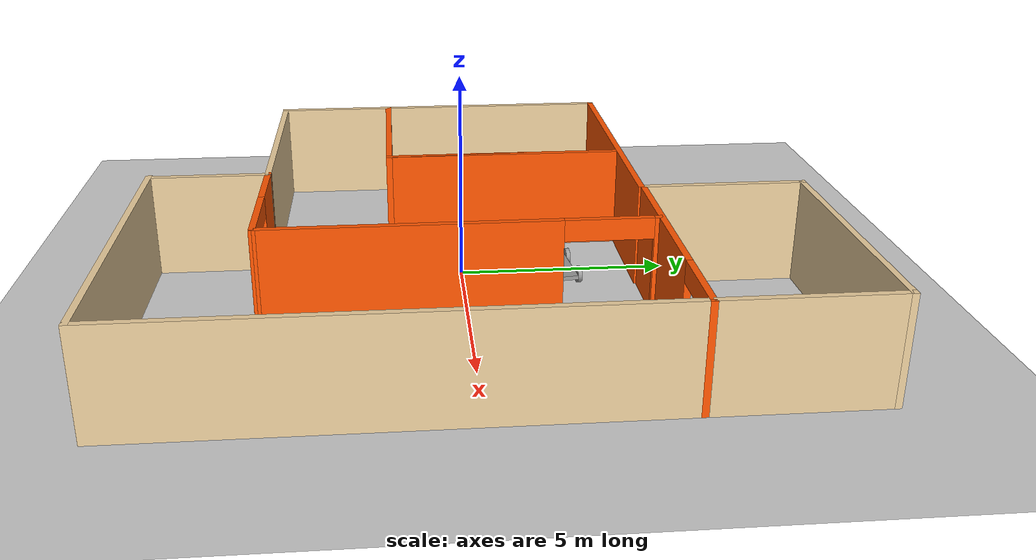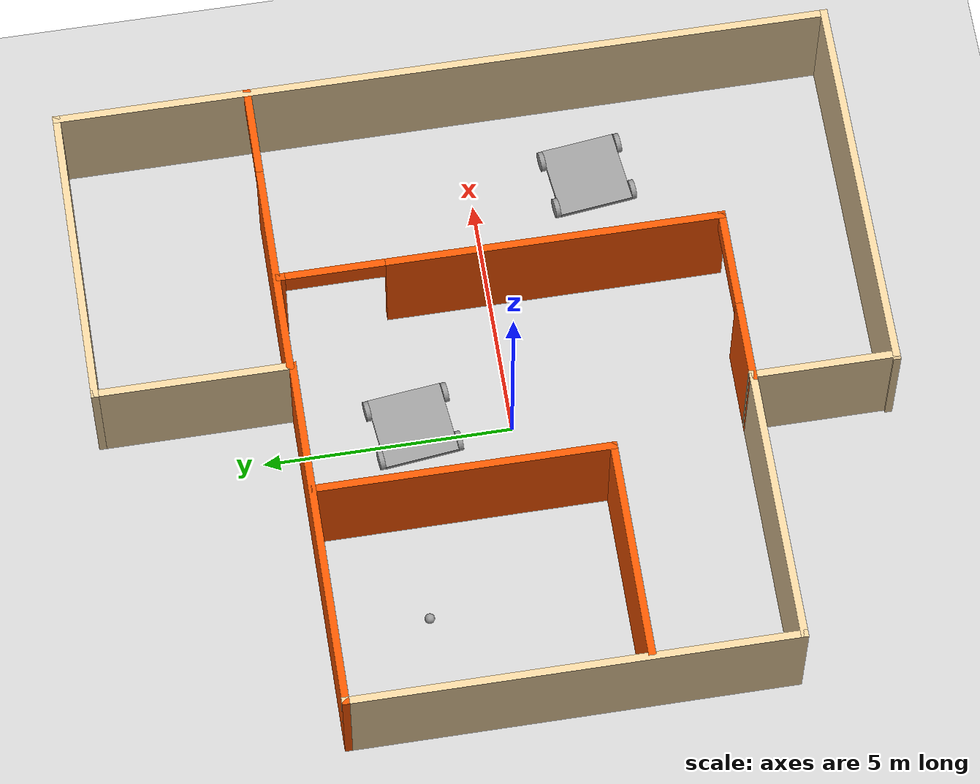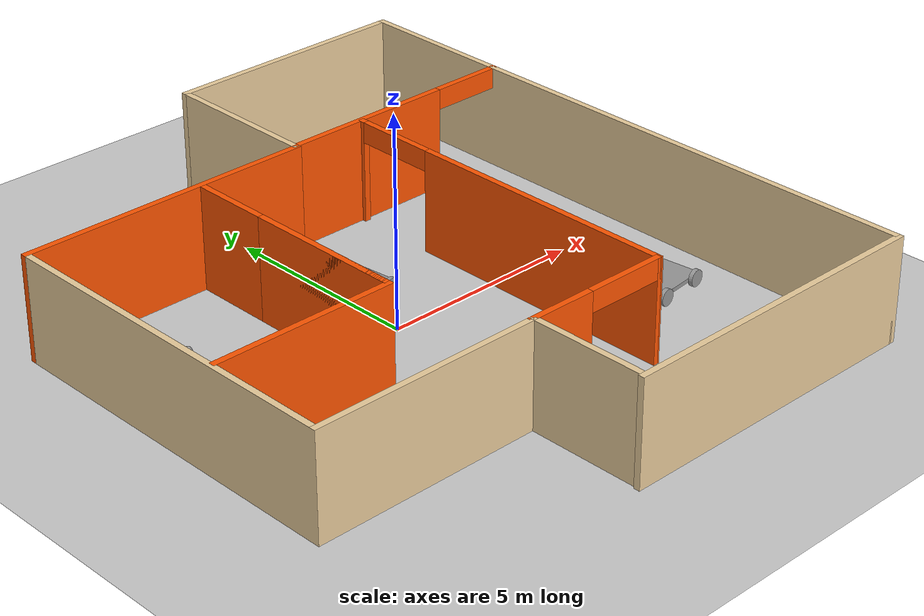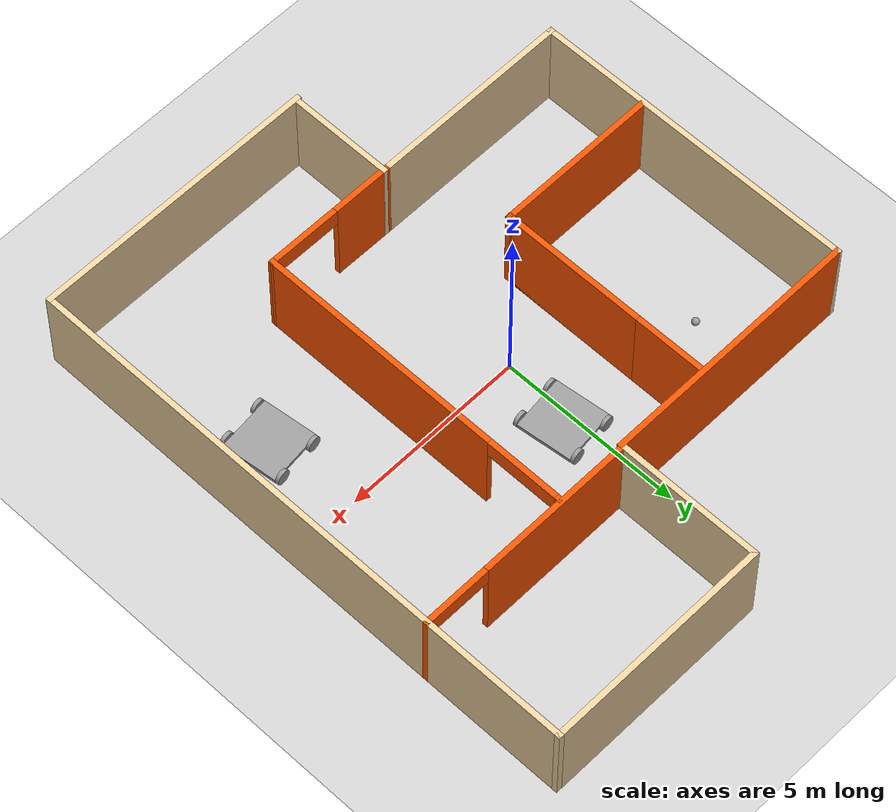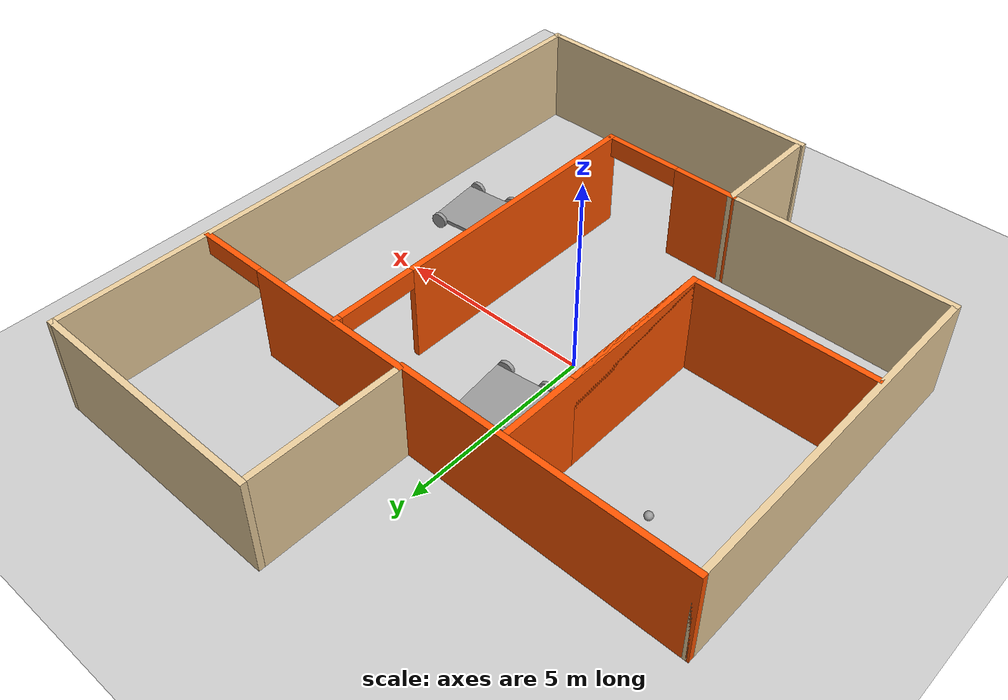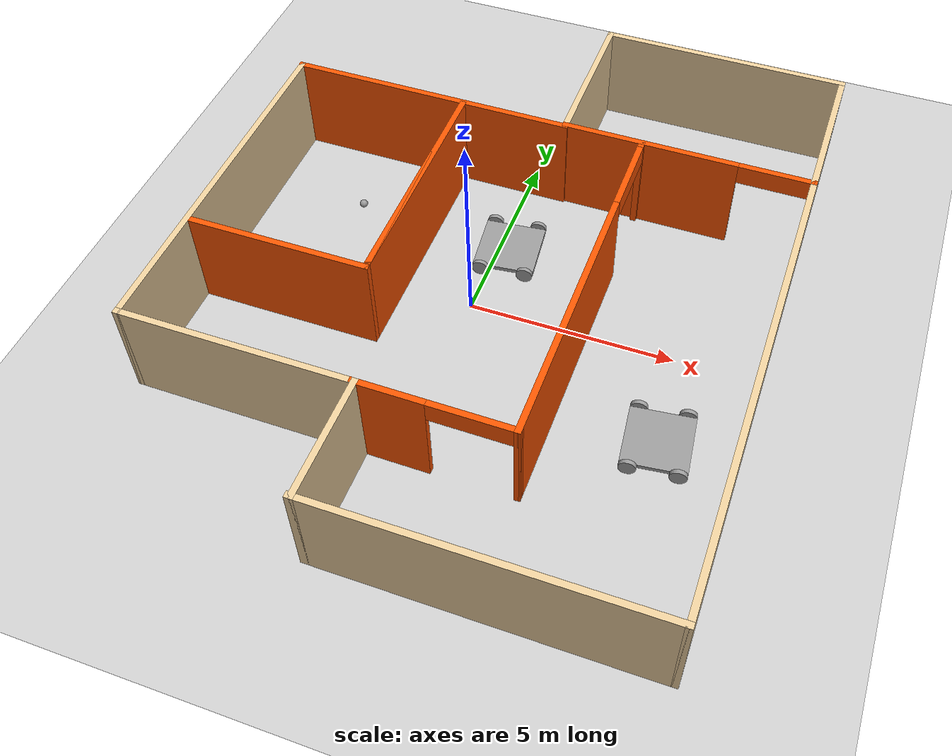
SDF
<sdf version="1.6">
 <world name="default">
  <plugin name="hello" filename="libhello.so"/>
  <light name="sun" type="directional">
   <pose>0 0 10 0 -0 0</pose>
   <diffuse>0.8 0.8 0.8 1</diffuse>
   <specular>0.2 0.2 0.2 1</specular>
   <attenuation>
    <range>1000</range>
    <constant>0.9</constant>
    <linear>0.01</linear>
    <quadratic>0.001</quadratic>
   </attenuation>
   <direction>-0.5 0.1 -0.9</direction>
  </light>
  <model name="ground_plane">
   <static>1</static>
   <link name="link">
    <collision name="collision">
     <geometry><plane><normal>0 0 1</normal><size>100 100</size></plane></geometry>
     <surface>
      <contact><collide_bitmask>65535</collide_bitmask></contact>
      <friction><ode><mu>100</mu><mu2>50</mu2></ode></friction>
     </surface>
    </collision>
    <visual name="visual">
     <cast_shadows>0</cast_shadows>
     <geometry><plane><normal>0 0 1</normal><size>100 100</size></plane></geometry>
     <material>
      <script><uri>file://media/materials/scripts/gazebo.material</uri><name>Gazebo/Grey</name></script>
     </material>
    </visual>
   </link>
  </model>
  <gravity>0 0 -9.8</gravity>
  <magnetic_field>6e-06 2.3e-05 -4.2e-05</magnetic_field>
  <atmosphere type="adiabatic"/>
  <physics name="default_physics" default="0" type="ode">
   <max_step_size>0.001</max_step_size>
   <real_time_factor>1</real_time_factor>
   <real_time_update_rate>1000</real_time_update_rate>
  </physics>
  <scene><ambient>0.4 0.4 0.4 1</ambient><background>0.7 0.7 0.7 1</background><shadows>1</shadows></scene>
  <spherical_coordinates>
   <surface_model>EARTH_WGS84</surface_model>
   <latitude_deg>0</latitude_deg>
   <longitude_deg>0</longitude_deg>
   <elevation>0</elevation>
   <heading_deg>0</heading_deg>
  </spherical_coordinates>
  <model name="projectbuilding">
   <pose>0.41461 0.308509 0 0 -0 0</pose>
   <link name="Wall_13">
    <collision name="Wall_13_Collision">
     <geometry><box><size>9 0.15 2.5</size></box></geometry>
     <pose>0 0 1.25 0 -0 0</pose>
    </collision>
    <visual name="Wall_13_Visual">
     <pose>0 0 1.25 0 -0 0</pose>
     <geometry><box><size>9 0.15 2.5</size></box></geometry>
     <material>
      <script><uri>file://media/materials/scripts/gazebo.material</uri><name>Gazebo/Grey</name></script>
      <ambient>0.921569 0.807843 0.615686 1</ambient>
     </material>
     <meta><layer>0</layer></meta>
    </visual>
    <pose>-6.6 -0.525 0 0 0 -1.5708</pose>
   </link>
   <link name="Wall_15">
    <collision name="Wall_15_Collision">
     <geometry><box><size>5.62 0.15 2.5</size></box></geometry>
     <pose>0 0 1.25 0 -0 0</pose>
    </collision>
    <visual name="Wall_15_Visual">
     <pose>0 0 1.25 0 -0 0</pose>
     <geometry><box><size>5.62 0.15 2.5</size></box></geometry>
     <material>
      <script><uri>file://media/materials/scripts/gazebo.material</uri><name>Gazebo/Grey</name></script>
      <ambient>0.921569 0.807843 0.615686 1</ambient>
     </material>
     <meta><layer>0</layer></meta>
    </visual>
    <pose>-3.865 -4.95 0 0 -0 0</pose>
   </link>
   <link name="Wall_17">
    <collision name="Wall_17_Collision">
     <geometry><box><size>3 0.15 2.5</size></box></geometry>
     <pose>0 0 1.25 0 -0 0</pose>
    </collision>
    <visual name="Wall_17_Visual">
     <pose>0 0 1.25 0 -0 0</pose>
     <geometry><box><size>3 0.15 2.5</size></box></geometry>
     <material>
      <script><uri>file://media/materials/scripts/gazebo.material</uri><name>Gazebo/Grey</name></script>
      <ambient>0.921569 0.807843 0.615686 1</ambient>
     </material>
     <meta><layer>0</layer></meta>
    </visual>
    <pose>-1.084 -6.375 0 0 0 -1.5708</pose>
   </link>
   <link name="Wall_19">
    <collision name="Wall_19_Collision">
     <geometry><box><size>7.88 0.15 2.5</size></box></geometry>
     <pose>0 0 1.25 0 -0 0</pose>
    </collision>
    <visual name="Wall_19_Visual">
     <pose>0 0 1.25 0 -0 0</pose>
     <geometry><box><size>7.88 0.15 2.5</size></box></geometry>
     <material>
      <script><uri>file://media/materials/scripts/gazebo.material</uri><name>Gazebo/Grey</name></script>
      <ambient>0.921569 0.807843 0.615686 1</ambient>
     </material>
     <meta><layer>0</layer></meta>
    </visual>
    <pose>2.735 -7.8 0 0 -0 0</pose>
   </link>
   <link name="Wall_2">
    <collision name="Wall_2_Collision">
     <geometry><box><size>7.25 0.15 2.5</size></box></geometry>
     <pose>0 0 1.25 0 -0 0</pose>
    </collision>
    <visual name="Wall_2_Visual">
     <pose>0 0 1.25 0 -0 0</pose>
     <geometry><box><size>7.25 0.15 2.5</size></box></geometry>
     <material>
      <script><uri>file://media/materials/scripts/gazebo.material</uri><name>Gazebo/Grey</name></script>
      <ambient>1 0.333333 0 1</ambient>
     </material>
     <meta><layer>0</layer></meta>
    </visual>
    <pose>-3.05 3.9 0 0 -0 0</pose>
   </link>
   <link name="Wall_21">
    <collision name="Wall_21_Collision">
     <geometry><box><size>15.75 0.15 2.5</size></box></geometry>
     <pose>0 0 1.25 0 -0 0</pose>
    </collision>
    <visual name="Wall_21_Visual">
     <pose>0 0 1.25 0 -0 0</pose>
     <geometry><box><size>15.75 0.15 2.5</size></box></geometry>
     <material>
      <script><uri>file://media/materials/scripts/gazebo.material</uri><name>Gazebo/Grey</name></script>
      <ambient>0.921569 0.807843 0.615686 1</ambient>
     </material>
     <meta><layer>0</layer></meta>
    </visual>
    <pose>6.6 0 0 0 -0 1.5708</pose>
   </link>
   <link name="Wall_22">
    <collision name="Wall_22_Collision">
     <geometry><box><size>6.25 0.15 2.5</size></box></geometry>
     <pose>0 0 1.25 0 -0 0</pose>
    </collision>
    <visual name="Wall_22_Visual">
     <pose>0 0 1.25 0 -0 0</pose>
     <geometry><box><size>6.25 0.15 2.5</size></box></geometry>
     <material>
      <script><uri>file://media/materials/scripts/gazebo.material</uri><name>Gazebo/Grey</name></script>
      <ambient>0.921569 0.807843 0.615686 1</ambient>
     </material>
     <meta><layer>0</layer></meta>
    </visual>
    <pose>3.55 7.8 0 0 -0 3.14159</pose>
   </link>
   <link name="Wall_23">
    <collision name="Wall_23_Collision">
     <geometry><box><size>4 0.15 2.5</size></box></geometry>
     <pose>0 0 1.25 0 -0 0</pose>
    </collision>
    <visual name="Wall_23_Visual">
     <pose>0 0 1.25 0 -0 0</pose>
     <geometry><box><size>4 0.15 2.5</size></box></geometry>
     <material>
      <script><uri>file://media/materials/scripts/gazebo.material</uri><name>Gazebo/Grey</name></script>
      <ambient>0.921569 0.807843 0.615686 1</ambient>
     </material>
     <meta><layer>0</layer></meta>
    </visual>
    <pose>0.5 5.875 0 0 0 -1.5708</pose>
   </link>
   <link name="Wall_25">
    <pose>-2.16039 0.913927 0 0 0 -1.5708</pose>
    <visual name="Wall_25_Visual_0">
     <pose>0 0 1.25 0 -0 0</pose>
     <geometry><box><size>6 0.15 2.5</size></box></geometry>
     <material>
      <script><uri>file://media/materials/scripts/gazebo.material</uri><name>Gazebo/Grey</name></script>
      <ambient>1 0.333333 0 1</ambient>
     </material>
     <meta><layer>0</layer></meta>
    </visual>
    <collision name="Wall_25_Collision_0">
     <geometry><box><size>6 0.15 2.5</size></box></geometry>
     <pose>0 0 1.25 0 -0 0</pose>
    </collision>
    <visual name="Wall_25_Visual_1">
     <pose>0.9975 0 1.25 0 -0 0</pose>
     <geometry><box><size>4.005 0.15 2.5</size></box></geometry>
     <material>
      <script><uri>file://media/materials/scripts/gazebo.material</uri><name>Gazebo/Grey</name></script>
      <ambient>1 0.333333 0 1</ambient>
     </material>
     <meta><layer>0</layer></meta>
    </visual>
    <collision name="Wall_25_Collision_1">
     <geometry><box><size>4.005 0.15 2.5</size></box></geometry>
     <pose>0.9975 0 1.25 0 -0 0</pose>
    </collision>
   </link>
   <link name="Wall_26">
    <collision name="Wall_26_Collision">
     <geometry><box><size>4.5 0.15 2.5</size></box></geometry>
     <pose>0 0 1.25 0 -0 0</pose>
    </collision>
    <visual name="Wall_26_Visual">
     <pose>0 0 1.25 0 -0 0</pose>
     <geometry><box><size>4.5 0.15 2.5</size></box></geometry>
     <material>
      <script><uri>file://media/materials/scripts/gazebo.material</uri><name>Gazebo/Grey</name></script>
      <ambient>1 0.333333 0 1</ambient>
     </material>
     <meta><layer>0</layer></meta>
    </visual>
    <pose>-4.33539 -2.01107 0 0 -0 3.14159</pose>
   </link>
   <link name="Wall_28">
    <pose>3.55 3.95 0 0 -0 0</pose>
    <visual name="Wall_28_Visual_0">
     <pose>-0.934154 0 1.25 0 -0 0</pose>
     <geometry><box><size>4.38169 0.15 2.5</size></box></geometry>
     <material>
      <script><uri>file://media/materials/scripts/gazebo.material</uri><name>Gazebo/Grey</name></script>
      <ambient>1 0.333333 0 1</ambient>
     </material>
     <meta><layer>0</layer></meta>
    </visual>
    <collision name="Wall_28_Collision_0">
     <geometry><box><size>4.38169 0.15 2.5</size></box></geometry>
     <pose>-0.934154 0 1.25 0 -0 0</pose>
    </collision>
    <visual name="Wall_28_Visual_1">
     <pose>3.09085 0 1.25 0 -0 0</pose>
     <geometry><box><size>0.068309 0.15 2.5</size></box></geometry>
     <material>
      <script><uri>file://media/materials/scripts/gazebo.material</uri><name>Gazebo/Grey</name></script>
      <ambient>1 0.333333 0 1</ambient>
     </material>
     <meta><layer>0</layer></meta>
    </visual>
    <collision name="Wall_28_Collision_1">
     <geometry><box><size>0.068309 0.15 2.5</size></box></geometry>
     <pose>3.09085 0 1.25 0 -0 0</pose>
    </collision>
    <visual name="Wall_28_Visual_2">
     <pose>2.15669 0 2.25 0 -0 0</pose>
     <geometry><box><size>1.8 0.15 0.5</size></box></geometry>
     <material>
      <script><uri>file://media/materials/scripts/gazebo.material</uri><name>Gazebo/Grey</name></script>
      <ambient>1 0.333333 0 1</ambient>
     </material>
     <meta><layer>0</layer></meta>
    </visual>
    <collision name="Wall_28_Collision_2">
     <geometry><box><size>1.8 0.15 0.5</size></box></geometry>
     <pose>2.15669 0 2.25 0 -0 0</pose>
    </collision>
   </link>
   <link name="Wall_30">
    <pose>2.43961 -0.540073 0 0 0 -1.5708</pose>
    <visual name="Wall_30_Visual_0">
     <pose>-4.41021 0 1.25 0 -0 0</pose>
     <geometry><box><size>0.179569 0.15 2.5</size></box></geometry>
     <material>
      <script><uri>file://media/materials/scripts/gazebo.material</uri><name>Gazebo/Grey</name></script>
      <ambient>1 0.333333 0 1</ambient>
     </material>
     <meta><layer>0</layer></meta>
    </visual>
    <collision name="Wall_30_Collision_0">
     <geometry><box><size>0.179569 0.15 2.5</size></box></geometry>
     <pose>-4.41021 0 1.25 0 -0 0</pose>
    </collision>
    <visual name="Wall_30_Visual_1">
     <pose>1.08979 0 1.25 0 -0 0</pose>
     <geometry><box><size>6.82043 0.15 2.5</size></box></geometry>
     <material>
      <script><uri>file://media/materials/scripts/gazebo.material</uri><name>Gazebo/Grey</name></script>
      <ambient>1 0.333333 0 1</ambient>
     </material>
     <meta><layer>0</layer></meta>
    </visual>
    <collision name="Wall_30_Collision_1">
     <geometry><box><size>6.82043 0.15 2.5</size></box></geometry>
     <pose>1.08979 0 1.25 0 -0 0</pose>
    </collision>
    <visual name="Wall_30_Visual_2">
     <pose>-3.32043 0 2.25 0 -0 0</pose>
     <geometry><box><size>2 0.15 0.5</size></box></geometry>
     <material>
      <script><uri>file://media/materials/scripts/gazebo.material</uri><name>Gazebo/Grey</name></script>
      <ambient>1 0.333333 0 1</ambient>
     </material>
     <meta><layer>0</layer></meta>
    </visual>
    <collision name="Wall_30_Collision_2">
     <geometry><box><size>2 0.15 0.5</size></box></geometry>
     <pose>-3.32043 0 2.25 0 -0 0</pose>
    </collision>
   </link>
   <link name="Wall_31">
    <pose>0.654806 -4.95754 0 0 -0 3.13737</pose>
    <visual name="Wall_31_Visual_0">
     <pose>-1.83934 0 1.25 0 -0 0</pose>
     <geometry><box><size>0.040957 0.15 2.5</size></box></geometry>
     <material>
      <script><uri>file://media/materials/scripts/gazebo.material</uri><name>Gazebo/Grey</name></script>
      <ambient>1 0.333333 0 1</ambient>
     </material>
     <meta><layer>0</layer></meta>
    </visual>
    <collision name="Wall_31_Collision_0">
     <geometry><box><size>0.040957 0.15 2.5</size></box></geometry>
     <pose>-1.83934 0 1.25 0 -0 0</pose>
    </collision>
    <visual name="Wall_31_Visual_1">
     <pose>1.02048 0 1.25 0 -0 0</pose>
     <geometry><box><size>1.67869 0.15 2.5</size></box></geometry>
     <material>
      <script><uri>file://media/materials/scripts/gazebo.material</uri><name>Gazebo/Grey</name></script>
      <ambient>1 0.333333 0 1</ambient>
     </material>
     <meta><layer>0</layer></meta>
    </visual>
    <collision name="Wall_31_Collision_1">
     <geometry><box><size>1.67869 0.15 2.5</size></box></geometry>
     <pose>1.02048 0 1.25 0 -0 0</pose>
    </collision>
    <visual name="Wall_31_Visual_2">
     <pose>-0.818865 0 2.25 0 -0 0</pose>
     <geometry><box><size>2 0.15 0.5</size></box></geometry>
     <material>
      <script><uri>file://media/materials/scripts/gazebo.material</uri><name>Gazebo/Grey</name></script>
      <ambient>1 0.333333 0 1</ambient>
     </material>
     <meta><layer>0</layer></meta>
    </visual>
    <collision name="Wall_31_Collision_2">
     <geometry><box><size>2 0.15 0.5</size></box></geometry>
     <pose>-0.818865 0 2.25 0 -0 0</pose>
    </collision>
   </link>
   <static>1</static>
  </model>
  <model name="4wheelrobot_0">
   <link name="link_0">
    <inertial>
     <mass>1</mass>
     <inertia>
      <ixx>0.166667</ixx>
      <ixy>0</ixy>
      <ixz>0</ixz>
      <iyy>0.166667</iyy>
      <iyz>0</iyz>
      <izz>0.166667</izz>
     </inertia>
    </inertial>
    <visual name="visual">
     <geometry><box><size>1.5 1.5 0.1</size></box></geometry>
     <material>
      <lighting>1</lighting>
      <script><uri>file://media/materials/scripts/gazebo.material</uri><name>Gazebo/Grey</name></script>
      <shader type="pixel"><normal_map>__default__</normal_map></shader>
      <ambient>0.3 0.3 0.3 1</ambient>
      <diffuse>0.7 0.7 0.7 1</diffuse>
      <specular>0.01 0.01 0.01 1</specular>
      <emissive>0 0 0 1</emissive>
     </material>
    </visual>
    <collision name="collision">
     <geometry><box><size>1.5 1.5 0.1</size></box></geometry>
     <surface>
      <friction>
       <ode><mu>1</mu><mu2>1</mu2><fdir1>0 0 0</fdir1><slip1>0</slip1><slip2>0</slip2></ode>
       <torsional>
        <coefficient>1</coefficient>
        <patch_radius>0</patch_radius>
        <surface_radius>0</surface_radius>
        <use_patch_radius>1</use_patch_radius>
        <ode><slip>0</slip></ode>
       </torsional>
      </friction>
      <bounce><restitution_coefficient>0</restitution_coefficient><threshold>1e+06</threshold></bounce>
      <contact>
       <collide_without_contact>0</collide_without_contact>
       <collide_without_contact_bitmask>1</collide_without_contact_bitmask>
       <collide_bitmask>1</collide_bitmask>
       <ode>
        <soft_cfm>0</soft_cfm>
        <soft_erp>0.2</soft_erp>
        <kp>1e+13</kp>
        <kd>1</kd>
        <max_vel>0.01</max_vel>
        <min_depth>0</min_depth>
       </ode>
       <bullet>
        <split_impulse>1</split_impulse>
        <split_impulse_penetration_threshold>-0.01</split_impulse_penetration_threshold>
        <soft_cfm>0</soft_cfm>
        <soft_erp>0.2</soft_erp>
        <kp>1e+13</kp>
        <kd>1</kd>
       </bullet>
      </contact>
     </surface>
    </collision>
   </link>
   <link name="link_2">
    <pose>-0.55 -0.800019 0 1.5707 -0 0</pose>
    <inertial>
     <mass>1</mass>
     <inertia><ixx>0.145833</ixx><ixy>0</ixy><ixz>0</ixz><iyy>0.145833</iyy><iyz>0</iyz><izz>0.125</izz></inertia>
    </inertial>
    <visual name="visual">
     <geometry><cylinder><radius>0.2</radius><length>0.1</length></cylinder></geometry>
     <material>
      <lighting>1</lighting>
      <script><uri>file://media/materials/scripts/gazebo.material</uri><name>Gazebo/Grey</name></script>
      <shader type="pixel"><normal_map>__default__</normal_map></shader>
      <ambient>0.3 0.3 0.3 1</ambient>
      <diffuse>0.7 0.7 0.7 1</diffuse>
      <specular>0.01 0.01 0.01 1</specular>
      <emissive>0 0 0 1</emissive>
     </material>
    </visual>
    <collision name="collision">
     <geometry><cylinder><radius>0.2</radius><length>0.1</length></cylinder></geometry>
     <surface>
      <friction>
       <ode><mu>1</mu><mu2>1</mu2><fdir1>0 0 0</fdir1><slip1>0</slip1><slip2>0</slip2></ode>
       <torsional>
        <coefficient>1</coefficient>
        <patch_radius>0</patch_radius>
        <surface_radius>0</surface_radius>
        <use_patch_radius>1</use_patch_radius>
        <ode><slip>0</slip></ode>
       </torsional>
      </friction>
      <bounce><restitution_coefficient>0</restitution_coefficient><threshold>1e+06</threshold></bounce>
      <contact>
       <collide_without_contact>0</collide_without_contact>
       <collide_without_contact_bitmask>1</collide_without_contact_bitmask>
       <collide_bitmask>1</collide_bitmask>
       <ode>
        <soft_cfm>0</soft_cfm>
        <soft_erp>0.2</soft_erp>
        <kp>1e+13</kp>
        <kd>1</kd>
        <max_vel>0.01</max_vel>
        <min_depth>0</min_depth>
       </ode>
       <bullet>
        <split_impulse>1</split_impulse>
        <split_impulse_penetration_threshold>-0.01</split_impulse_penetration_threshold>
        <soft_cfm>0</soft_cfm>
        <soft_erp>0.2</soft_erp>
        <kp>1e+13</kp>
        <kd>1</kd>
       </bullet>
      </contact>
     </surface>
    </collision>
   </link>
   <link name="link_2_clone">
    <pose>-0.55 0.800019 0 1.5707 -0 0</pose>
    <inertial>
     <mass>1</mass>
     <inertia><ixx>0.145833</ixx><ixy>0</ixy><ixz>0</ixz><iyy>0.145833</iyy><iyz>0</iyz><izz>0.125</izz></inertia>
    </inertial>
    <visual name="visual">
     <geometry><cylinder><radius>0.2</radius><length>0.1</length></cylinder></geometry>
     <material>
      <lighting>1</lighting>
      <script><uri>file://media/materials/scripts/gazebo.material</uri><name>Gazebo/Grey</name></script>
      <shader type="pixel"><normal_map>__default__</normal_map></shader>
      <ambient>0.3 0.3 0.3 1</ambient>
      <diffuse>0.7 0.7 0.7 1</diffuse>
      <specular>0.01 0.01 0.01 1</specular>
      <emissive>0 0 0 1</emissive>
     </material>
    </visual>
    <collision name="collision">
     <geometry><cylinder><radius>0.2</radius><length>0.1</length></cylinder></geometry>
     <surface>
      <friction>
       <ode><mu>1</mu><mu2>1</mu2><fdir1>0 0 0</fdir1><slip1>0</slip1><slip2>0</slip2></ode>
       <torsional>
        <coefficient>1</coefficient>
        <patch_radius>0</patch_radius>
        <surface_radius>0</surface_radius>
        <use_patch_radius>1</use_patch_radius>
        <ode><slip>0</slip></ode>
       </torsional>
      </friction>
      <bounce><restitution_coefficient>0</restitution_coefficient><threshold>1e+06</threshold></bounce>
      <contact>
       <collide_without_contact>0</collide_without_contact>
       <collide_without_contact_bitmask>1</collide_without_contact_bitmask>
       <collide_bitmask>1</collide_bitmask>
       <ode>
        <soft_cfm>0</soft_cfm>
        <soft_erp>0.2</soft_erp>
        <kp>1e+13</kp>
        <kd>1</kd>
        <max_vel>0.01</max_vel>
        <min_depth>0</min_depth>
       </ode>
       <bullet>
        <split_impulse>1</split_impulse>
        <split_impulse_penetration_threshold>-0.01</split_impulse_penetration_threshold>
        <soft_cfm>0</soft_cfm>
        <soft_erp>0.2</soft_erp>
        <kp>1e+13</kp>
        <kd>1</kd>
       </bullet>
      </contact>
     </surface>
    </collision>
   </link>
   <link name="link_2_clone_0">
    <pose>0.55 0.800019 0 1.5707 -0 0</pose>
    <inertial>
     <mass>1</mass>
     <inertia><ixx>0.145833</ixx><ixy>0</ixy><ixz>0</ixz><iyy>0.145833</iyy><iyz>0</iyz><izz>0.125</izz></inertia>
    </inertial>
    <visual name="visual">
     <geometry><cylinder><radius>0.2</radius><length>0.1</length></cylinder></geometry>
     <material>
      <lighting>1</lighting>
      <script><uri>file://media/materials/scripts/gazebo.material</uri><name>Gazebo/Grey</name></script>
      <shader type="pixel"><normal_map>__default__</normal_map></shader>
      <ambient>0.3 0.3 0.3 1</ambient>
      <diffuse>0.7 0.7 0.7 1</diffuse>
      <specular>0.01 0.01 0.01 1</specular>
      <emissive>0 0 0 1</emissive>
     </material>
    </visual>
    <collision name="collision">
     <geometry><cylinder><radius>0.2</radius><length>0.1</length></cylinder></geometry>
     <surface>
      <friction>
       <ode><mu>1</mu><mu2>1</mu2><fdir1>0 0 0</fdir1><slip1>0</slip1><slip2>0</slip2></ode>
       <torsional>
        <coefficient>1</coefficient>
        <patch_radius>0</patch_radius>
        <surface_radius>0</surface_radius>
        <use_patch_radius>1</use_patch_radius>
        <ode><slip>0</slip></ode>
       </torsional>
      </friction>
      <bounce><restitution_coefficient>0</restitution_coefficient><threshold>1e+06</threshold></bounce>
      <contact>
       <collide_without_contact>0</collide_without_contact>
       <collide_without_contact_bitmask>1</collide_without_contact_bitmask>
       <collide_bitmask>1</collide_bitmask>
       <ode>
        <soft_cfm>0</soft_cfm>
        <soft_erp>0.2</soft_erp>
        <kp>1e+13</kp>
        <kd>1</kd>
        <max_vel>0.01</max_vel>
        <min_depth>0</min_depth>
       </ode>
       <bullet>
        <split_impulse>1</split_impulse>
        <split_impulse_penetration_threshold>-0.01</split_impulse_penetration_threshold>
        <soft_cfm>0</soft_cfm>
        <soft_erp>0.2</soft_erp>
        <kp>1e+13</kp>
        <kd>1</kd>
       </bullet>
      </contact>
     </surface>
    </collision>
   </link>
   <link name="link_2_clone_1">
    <pose>0.55 -0.800019 0 1.5707 -0 0</pose>
    <inertial>
     <mass>1</mass>
     <inertia><ixx>0.145833</ixx><ixy>0</ixy><ixz>0</ixz><iyy>0.145833</iyy><iyz>0</iyz><izz>0.125</izz></inertia>
    </inertial>
    <visual name="visual">
     <geometry><cylinder><radius>0.2</radius><length>0.1</length></cylinder></geometry>
     <material>
      <lighting>1</lighting>
      <script><uri>file://media/materials/scripts/gazebo.material</uri><name>Gazebo/Grey</name></script>
      <shader type="pixel"><normal_map>__default__</normal_map></shader>
      <ambient>0.3 0.3 0.3 1</ambient>
      <diffuse>0.7 0.7 0.7 1</diffuse>
      <specular>0.01 0.01 0.01 1</specular>
      <emissive>0 0 0 1</emissive>
     </material>
    </visual>
    <collision name="collision">
     <geometry><cylinder><radius>0.2</radius><length>0.1</length></cylinder></geometry>
     <surface>
      <friction>
       <ode><mu>1</mu><mu2>1</mu2><fdir1>0 0 0</fdir1><slip1>0</slip1><slip2>0</slip2></ode>
       <torsional>
        <coefficient>1</coefficient>
        <patch_radius>0</patch_radius>
        <surface_radius>0</surface_radius>
        <use_patch_radius>1</use_patch_radius>
        <ode><slip>0</slip></ode>
       </torsional>
      </friction>
      <bounce><restitution_coefficient>0</restitution_coefficient><threshold>1e+06</threshold></bounce>
      <contact>
       <collide_without_contact>0</collide_without_contact>
       <collide_without_contact_bitmask>1</collide_without_contact_bitmask>
       <collide_bitmask>1</collide_bitmask>
       <ode>
        <soft_cfm>0</soft_cfm>
        <soft_erp>0.2</soft_erp>
        <kp>1e+13</kp>
        <kd>1</kd>
        <max_vel>0.01</max_vel>
        <min_depth>0</min_depth>
       </ode>
       <bullet>
        <split_impulse>1</split_impulse>
        <split_impulse_penetration_threshold>-0.01</split_impulse_penetration_threshold>
        <soft_cfm>0</soft_cfm>
        <soft_erp>0.2</soft_erp>
        <kp>1e+13</kp>
        <kd>1</kd>
       </bullet>
      </contact>
     </surface>
    </collision>
   </link>
   <joint name="link_0_JOINT_0" type="revolute">
    <parent>link_0</parent>
    <child>link_2</child>
    <pose>0.5 0 0 0 -0.01 0</pose>
    <axis>
     <xyz>0 0 1</xyz>
     <use_parent_model_frame>0</use_parent_model_frame>
     <limit>
      <lower>-1.79769e+308</lower>
      <upper>1.79769e+308</upper>
      <effort>-1</effort>
      <velocity>-1</velocity>
     </limit>
     <dynamics>
      <spring_reference>0</spring_reference>
      <spring_stiffness>0</spring_stiffness>
      <damping>0</damping>
     </dynamics>
    </axis>
    <physics>
     <ode><limit><cfm>0</cfm><erp>0.2</erp></limit><suspension><cfm>0</cfm><erp>0.2</erp></suspension></ode>
    </physics>
   </joint>
   <joint name="link_0_JOINT_1" type="revolute">
    <parent>link_0</parent>
    <child>link_2_clone</child>
    <axis>
     <xyz>0 0 1</xyz>
     <use_parent_model_frame>0</use_parent_model_frame>
     <limit>
      <lower>-1.79769e+308</lower>
      <upper>1.79769e+308</upper>
      <effort>-1</effort>
      <velocity>-1</velocity>
     </limit>
     <dynamics>
      <spring_reference>0</spring_reference>
      <spring_stiffness>0</spring_stiffness>
      <damping>0</damping>
     </dynamics>
    </axis>
    <physics>
     <ode><limit><cfm>0</cfm><erp>0.2</erp></limit><suspension><cfm>0</cfm><erp>0.2</erp></suspension></ode>
    </physics>
   </joint>
   <joint name="link_0_JOINT_2" type="revolute">
    <parent>link_0</parent>
    <child>link_2_clone_0</child>
    <axis>
     <xyz>0 0 1</xyz>
     <use_parent_model_frame>0</use_parent_model_frame>
     <limit>
      <lower>-1.79769e+308</lower>
      <upper>1.79769e+308</upper>
      <effort>-1</effort>
      <velocity>-1</velocity>
     </limit>
     <dynamics>
      <spring_reference>0</spring_reference>
      <spring_stiffness>0</spring_stiffness>
      <damping>0</damping>
     </dynamics>
    </axis>
    <physics>
     <ode><limit><cfm>0</cfm><erp>0.2</erp></limit><suspension><cfm>0</cfm><erp>0.2</erp></suspension></ode>
    </physics>
   </joint>
   <joint name="link_0_JOINT_3" type="revolute">
    <parent>link_0</parent>
    <child>link_2_clone_1</child>
    <axis>
     <xyz>0 0 1</xyz>
     <use_parent_model_frame>0</use_parent_model_frame>
     <limit>
      <lower>-1.79769e+308</lower>
      <upper>1.79769e+308</upper>
      <effort>-1</effort>
      <velocity>-1</velocity>
     </limit>
     <dynamics>
      <spring_reference>0</spring_reference>
      <spring_stiffness>0</spring_stiffness>
      <damping>0</damping>
     </dynamics>
    </axis>
    <physics>
     <ode><limit><cfm>0</cfm><erp>0.2</erp></limit><suspension><cfm>0</cfm><erp>0.2</erp></suspension></ode>
    </physics>
   </joint>
   <static>0</static>
   <pose>5.27762 -2.39373 0.200002 3e-06 -0 0.114519</pose>
  </model>
  <model name="my_ball">
   <link name="link_1">
    <pose>2e-06 -1.2e-05 0 0 -0 0</pose>
    <inertial>
     <mass>1</mass>
     <inertia><ixx>0.1</ixx><ixy>0</ixy><ixz>0</ixz><iyy>0.1</iyy><iyz>0</iyz><izz>0.1</izz></inertia>
    </inertial>
    <visual name="visual">
     <geometry><sphere><radius>0.1</radius></sphere></geometry>
     <material>
      <lighting>1</lighting>
      <script><uri>file://media/materials/scripts/gazebo.material</uri><name>Gazebo/Grey</name></script>
      <shader type="pixel"><normal_map>__default__</normal_map></shader>
      <ambient>1 1 1 1</ambient>
      <diffuse>1 1 1 1</diffuse>
      <specular>1 1 1 1</specular>
      <emissive>1 1 1 1</emissive>
     </material>
    </visual>
    <collision name="collision">
     <geometry><sphere><radius>0.1</radius></sphere></geometry>
     <surface>
      <friction>
       <ode><mu>1</mu><mu2>1</mu2><fdir1>0 0 0</fdir1><slip1>0</slip1><slip2>0</slip2></ode>
       <torsional>
        <coefficient>1</coefficient>
        <patch_radius>0</patch_radius>
        <surface_radius>0</surface_radius>
        <use_patch_radius>1</use_patch_radius>
        <ode><slip>0</slip></ode>
       </torsional>
      </friction>
      <bounce><restitution_coefficient>0</restitution_coefficient><threshold>1e+06</threshold></bounce>
      <contact>
       <collide_without_contact>0</collide_without_contact>
       <collide_without_contact_bitmask>1</collide_without_contact_bitmask>
       <collide_bitmask>1</collide_bitmask>
       <ode>
        <soft_cfm>0</soft_cfm>
        <soft_erp>0.2</soft_erp>
        <kp>1e+13</kp>
        <kd>1</kd>
        <max_vel>0.01</max_vel>
        <min_depth>0</min_depth>
       </ode>
       <bullet>
        <split_impulse>1</split_impulse>
        <split_impulse_penetration_threshold>-0.01</split_impulse_penetration_threshold>
        <soft_cfm>0</soft_cfm>
        <soft_erp>0.2</soft_erp>
        <kp>1e+13</kp>
        <kd>1</kd>
       </bullet>
      </contact>
     </surface>
    </collision>
   </link>
   <static>0</static>
   <pose>-3.80764 2.24253 0.1 0 -0 0</pose>
  </model>
  <model name="4wheelrobot_0_clone">
   <link name="link_0">
    <inertial>
     <mass>1</mass>
     <inertia>
      <ixx>0.166667</ixx>
      <ixy>0</ixy>
      <ixz>0</ixz>
      <iyy>0.166667</iyy>
      <iyz>0</iyz>
      <izz>0.166667</izz>
     </inertia>
    </inertial>
    <visual name="visual">
     <geometry><box><size>1.5 1.5 0.1</size></box></geometry>
     <material>
      <lighting>1</lighting>
      <script><uri>file://media/materials/scripts/gazebo.material</uri><name>Gazebo/Grey</name></script>
      <shader type="pixel"><normal_map>__default__</normal_map></shader>
      <ambient>0.3 0.3 0.3 1</ambient>
      <diffuse>0.7 0.7 0.7 1</diffuse>
      <specular>0.01 0.01 0.01 1</specular>
      <emissive>0 0 0 1</emissive>
     </material>
    </visual>
    <collision name="collision">
     <geometry><box><size>1.5 1.5 0.1</size></box></geometry>
     <surface>
      <friction>
       <ode><mu>1</mu><mu2>1</mu2><fdir1>0 0 0</fdir1><slip1>0</slip1><slip2>0</slip2></ode>
       <torsional>
        <coefficient>1</coefficient>
        <patch_radius>0</patch_radius>
        <surface_radius>0</surface_radius>
        <use_patch_radius>1</use_patch_radius>
        <ode><slip>0</slip></ode>
       </torsional>
      </friction>
      <bounce><restitution_coefficient>0</restitution_coefficient><threshold>1e+06</threshold></bounce>
      <contact>
       <collide_without_contact>0</collide_without_contact>
       <collide_without_contact_bitmask>1</collide_without_contact_bitmask>
       <collide_bitmask>1</collide_bitmask>
       <ode>
        <soft_cfm>0</soft_cfm>
        <soft_erp>0.2</soft_erp>
        <kp>1e+13</kp>
        <kd>1</kd>
        <max_vel>0.01</max_vel>
        <min_depth>0</min_depth>
       </ode>
       <bullet>
        <split_impulse>1</split_impulse>
        <split_impulse_penetration_threshold>-0.01</split_impulse_penetration_threshold>
        <soft_cfm>0</soft_cfm>
        <soft_erp>0.2</soft_erp>
        <kp>1e+13</kp>
        <kd>1</kd>
       </bullet>
      </contact>
     </surface>
    </collision>
   </link>
   <link name="link_2">
    <pose>-0.55 -0.800019 0 1.5707 -0 0</pose>
    <inertial>
     <mass>1</mass>
     <inertia><ixx>0.145833</ixx><ixy>0</ixy><ixz>0</ixz><iyy>0.145833</iyy><iyz>0</iyz><izz>0.125</izz></inertia>
    </inertial>
    <visual name="visual">
     <geometry><cylinder><radius>0.2</radius><length>0.1</length></cylinder></geometry>
     <material>
      <lighting>1</lighting>
      <script><uri>file://media/materials/scripts/gazebo.material</uri><name>Gazebo/Grey</name></script>
      <shader type="pixel"><normal_map>__default__</normal_map></shader>
      <ambient>0.3 0.3 0.3 1</ambient>
      <diffuse>0.7 0.7 0.7 1</diffuse>
      <specular>0.01 0.01 0.01 1</specular>
      <emissive>0 0 0 1</emissive>
     </material>
    </visual>
    <collision name="collision">
     <geometry><cylinder><radius>0.2</radius><length>0.1</length></cylinder></geometry>
     <surface>
      <friction>
       <ode><mu>1</mu><mu2>1</mu2><fdir1>0 0 0</fdir1><slip1>0</slip1><slip2>0</slip2></ode>
       <torsional>
        <coefficient>1</coefficient>
        <patch_radius>0</patch_radius>
        <surface_radius>0</surface_radius>
        <use_patch_radius>1</use_patch_radius>
        <ode><slip>0</slip></ode>
       </torsional>
      </friction>
      <bounce><restitution_coefficient>0</restitution_coefficient><threshold>1e+06</threshold></bounce>
      <contact>
       <collide_without_contact>0</collide_without_contact>
       <collide_without_contact_bitmask>1</collide_without_contact_bitmask>
       <collide_bitmask>1</collide_bitmask>
       <ode>
        <soft_cfm>0</soft_cfm>
        <soft_erp>0.2</soft_erp>
        <kp>1e+13</kp>
        <kd>1</kd>
        <max_vel>0.01</max_vel>
        <min_depth>0</min_depth>
       </ode>
       <bullet>
        <split_impulse>1</split_impulse>
        <split_impulse_penetration_threshold>-0.01</split_impulse_penetration_threshold>
        <soft_cfm>0</soft_cfm>
        <soft_erp>0.2</soft_erp>
        <kp>1e+13</kp>
        <kd>1</kd>
       </bullet>
      </contact>
     </surface>
    </collision>
   </link>
   <link name="link_2_clone">
    <pose>-0.55 0.800019 0 1.5707 -0 0</pose>
    <inertial>
     <mass>1</mass>
     <inertia><ixx>0.145833</ixx><ixy>0</ixy><ixz>0</ixz><iyy>0.145833</iyy><iyz>0</iyz><izz>0.125</izz></inertia>
    </inertial>
    <visual name="visual">
     <geometry><cylinder><radius>0.2</radius><length>0.1</length></cylinder></geometry>
     <material>
      <lighting>1</lighting>
      <script><uri>file://media/materials/scripts/gazebo.material</uri><name>Gazebo/Grey</name></script>
      <shader type="pixel"><normal_map>__default__</normal_map></shader>
      <ambient>0.3 0.3 0.3 1</ambient>
      <diffuse>0.7 0.7 0.7 1</diffuse>
      <specular>0.01 0.01 0.01 1</specular>
      <emissive>0 0 0 1</emissive>
     </material>
    </visual>
    <collision name="collision">
     <geometry><cylinder><radius>0.2</radius><length>0.1</length></cylinder></geometry>
     <surface>
      <friction>
       <ode><mu>1</mu><mu2>1</mu2><fdir1>0 0 0</fdir1><slip1>0</slip1><slip2>0</slip2></ode>
       <torsional>
        <coefficient>1</coefficient>
        <patch_radius>0</patch_radius>
        <surface_radius>0</surface_radius>
        <use_patch_radius>1</use_patch_radius>
        <ode><slip>0</slip></ode>
       </torsional>
      </friction>
      <bounce><restitution_coefficient>0</restitution_coefficient><threshold>1e+06</threshold></bounce>
      <contact>
       <collide_without_contact>0</collide_without_contact>
       <collide_without_contact_bitmask>1</collide_without_contact_bitmask>
       <collide_bitmask>1</collide_bitmask>
       <ode>
        <soft_cfm>0</soft_cfm>
        <soft_erp>0.2</soft_erp>
        <kp>1e+13</kp>
        <kd>1</kd>
        <max_vel>0.01</max_vel>
        <min_depth>0</min_depth>
       </ode>
       <bullet>
        <split_impulse>1</split_impulse>
        <split_impulse_penetration_threshold>-0.01</split_impulse_penetration_threshold>
        <soft_cfm>0</soft_cfm>
        <soft_erp>0.2</soft_erp>
        <kp>1e+13</kp>
        <kd>1</kd>
       </bullet>
      </contact>
     </surface>
    </collision>
   </link>
   <link name="link_2_clone_0">
    <pose>0.55 0.800019 0 1.5707 -0 0</pose>
    <inertial>
     <mass>1</mass>
     <inertia><ixx>0.145833</ixx><ixy>0</ixy><ixz>0</ixz><iyy>0.145833</iyy><iyz>0</iyz><izz>0.125</izz></inertia>
    </inertial>
    <visual name="visual">
     <geometry><cylinder><radius>0.2</radius><length>0.1</length></cylinder></geometry>
     <material>
      <lighting>1</lighting>
      <script><uri>file://media/materials/scripts/gazebo.material</uri><name>Gazebo/Grey</name></script>
      <shader type="pixel"><normal_map>__default__</normal_map></shader>
      <ambient>0.3 0.3 0.3 1</ambient>
      <diffuse>0.7 0.7 0.7 1</diffuse>
      <specular>0.01 0.01 0.01 1</specular>
      <emissive>0 0 0 1</emissive>
     </material>
    </visual>
    <collision name="collision">
     <geometry><cylinder><radius>0.2</radius><length>0.1</length></cylinder></geometry>
     <surface>
      <friction>
       <ode><mu>1</mu><mu2>1</mu2><fdir1>0 0 0</fdir1><slip1>0</slip1><slip2>0</slip2></ode>
       <torsional>
        <coefficient>1</coefficient>
        <patch_radius>0</patch_radius>
        <surface_radius>0</surface_radius>
        <use_patch_radius>1</use_patch_radius>
        <ode><slip>0</slip></ode>
       </torsional>
      </friction>
      <bounce><restitution_coefficient>0</restitution_coefficient><threshold>1e+06</threshold></bounce>
      <contact>
       <collide_without_contact>0</collide_without_contact>
       <collide_without_contact_bitmask>1</collide_without_contact_bitmask>
       <collide_bitmask>1</collide_bitmask>
       <ode>
        <soft_cfm>0</soft_cfm>
        <soft_erp>0.2</soft_erp>
        <kp>1e+13</kp>
        <kd>1</kd>
        <max_vel>0.01</max_vel>
        <min_depth>0</min_depth>
       </ode>
       <bullet>
        <split_impulse>1</split_impulse>
        <split_impulse_penetration_threshold>-0.01</split_impulse_penetration_threshold>
        <soft_cfm>0</soft_cfm>
        <soft_erp>0.2</soft_erp>
        <kp>1e+13</kp>
        <kd>1</kd>
       </bullet>
      </contact>
     </surface>
    </collision>
   </link>
   <link name="link_2_clone_1">
    <pose>0.55 -0.800019 0 1.5707 -0 0</pose>
    <inertial>
     <mass>1</mass>
     <inertia><ixx>0.145833</ixx><ixy>0</ixy><ixz>0</ixz><iyy>0.145833</iyy><iyz>0</iyz><izz>0.125</izz></inertia>
    </inertial>
    <visual name="visual">
     <geometry><cylinder><radius>0.2</radius><length>0.1</length></cylinder></geometry>
     <material>
      <lighting>1</lighting>
      <script><uri>file://media/materials/scripts/gazebo.material</uri><name>Gazebo/Grey</name></script>
      <shader type="pixel"><normal_map>__default__</normal_map></shader>
      <ambient>0.3 0.3 0.3 1</ambient>
      <diffuse>0.7 0.7 0.7 1</diffuse>
      <specular>0.01 0.01 0.01 1</specular>
      <emissive>0 0 0 1</emissive>
     </material>
    </visual>
    <collision name="collision">
     <geometry><cylinder><radius>0.2</radius><length>0.1</length></cylinder></geometry>
     <surface>
      <friction>
       <ode><mu>1</mu><mu2>1</mu2><fdir1>0 0 0</fdir1><slip1>0</slip1><slip2>0</slip2></ode>
       <torsional>
        <coefficient>1</coefficient>
        <patch_radius>0</patch_radius>
        <surface_radius>0</surface_radius>
        <use_patch_radius>1</use_patch_radius>
        <ode><slip>0</slip></ode>
       </torsional>
      </friction>
      <bounce><restitution_coefficient>0</restitution_coefficient><threshold>1e+06</threshold></bounce>
      <contact>
       <collide_without_contact>0</collide_without_contact>
       <collide_without_contact_bitmask>1</collide_without_contact_bitmask>
       <collide_bitmask>1</collide_bitmask>
       <ode>
        <soft_cfm>0</soft_cfm>
        <soft_erp>0.2</soft_erp>
        <kp>1e+13</kp>
        <kd>1</kd>
        <max_vel>0.01</max_vel>
        <min_depth>0</min_depth>
       </ode>
       <bullet>
        <split_impulse>1</split_impulse>
        <split_impulse_penetration_threshold>-0.01</split_impulse_penetration_threshold>
        <soft_cfm>0</soft_cfm>
        <soft_erp>0.2</soft_erp>
        <kp>1e+13</kp>
        <kd>1</kd>
       </bullet>
      </contact>
     </surface>
    </collision>
   </link>
   <joint name="link_0_JOINT_0" type="revolute">
    <parent>link_0</parent>
    <child>link_2</child>
    <pose>0.5 0 0 0 -0.01 0</pose>
    <axis>
     <xyz>0 0 1</xyz>
     <use_parent_model_frame>0</use_parent_model_frame>
     <limit>
      <lower>-1.79769e+308</lower>
      <upper>1.79769e+308</upper>
      <effort>-1</effort>
      <velocity>-1</velocity>
     </limit>
     <dynamics>
      <spring_reference>0</spring_reference>
      <spring_stiffness>0</spring_stiffness>
      <damping>0</damping>
     </dynamics>
    </axis>
    <physics>
     <ode><limit><cfm>0</cfm><erp>0.2</erp></limit><suspension><cfm>0</cfm><erp>0.2</erp></suspension></ode>
    </physics>
   </joint>
   <joint name="link_0_JOINT_1" type="revolute">
    <parent>link_0</parent>
    <child>link_2_clone</child>
    <axis>
     <xyz>0 0 1</xyz>
     <use_parent_model_frame>0</use_parent_model_frame>
     <limit>
      <lower>-1.79769e+308</lower>
      <upper>1.79769e+308</upper>
      <effort>-1</effort>
      <velocity>-1</velocity>
     </limit>
     <dynamics>
      <spring_reference>0</spring_reference>
      <spring_stiffness>0</spring_stiffness>
      <damping>0</damping>
     </dynamics>
    </axis>
    <physics>
     <ode><limit><cfm>0</cfm><erp>0.2</erp></limit><suspension><cfm>0</cfm><erp>0.2</erp></suspension></ode>
    </physics>
   </joint>
   <joint name="link_0_JOINT_2" type="revolute">
    <parent>link_0</parent>
    <child>link_2_clone_0</child>
    <axis>
     <xyz>0 0 1</xyz>
     <use_parent_model_frame>0</use_parent_model_frame>
     <limit>
      <lower>-1.79769e+308</lower>
      <upper>1.79769e+308</upper>
      <effort>-1</effort>
      <velocity>-1</velocity>
     </limit>
     <dynamics>
      <spring_reference>0</spring_reference>
      <spring_stiffness>0</spring_stiffness>
      <damping>0</damping>
     </dynamics>
    </axis>
    <physics>
     <ode><limit><cfm>0</cfm><erp>0.2</erp></limit><suspension><cfm>0</cfm><erp>0.2</erp></suspension></ode>
    </physics>
   </joint>
   <joint name="link_0_JOINT_3" type="revolute">
    <parent>link_0</parent>
    <child>link_2_clone_1</child>
    <axis>
     <xyz>0 0 1</xyz>
     <use_parent_model_frame>0</use_parent_model_frame>
     <limit>
      <lower>-1.79769e+308</lower>
      <upper>1.79769e+308</upper>
      <effort>-1</effort>
      <velocity>-1</velocity>
     </limit>
     <dynamics>
      <spring_reference>0</spring_reference>
      <spring_stiffness>0</spring_stiffness>
      <damping>0</damping>
     </dynamics>
    </axis>
    <physics>
     <ode><limit><cfm>0</cfm><erp>0.2</erp></limit><suspension><cfm>0</cfm><erp>0.2</erp></suspension></ode>
    </physics>
   </joint>
   <static>0</static>
   <pose>0.291963 1.95093 0.200002 3e-06 -0 0.110109</pose>
  </model>
 </world>
</sdf>
